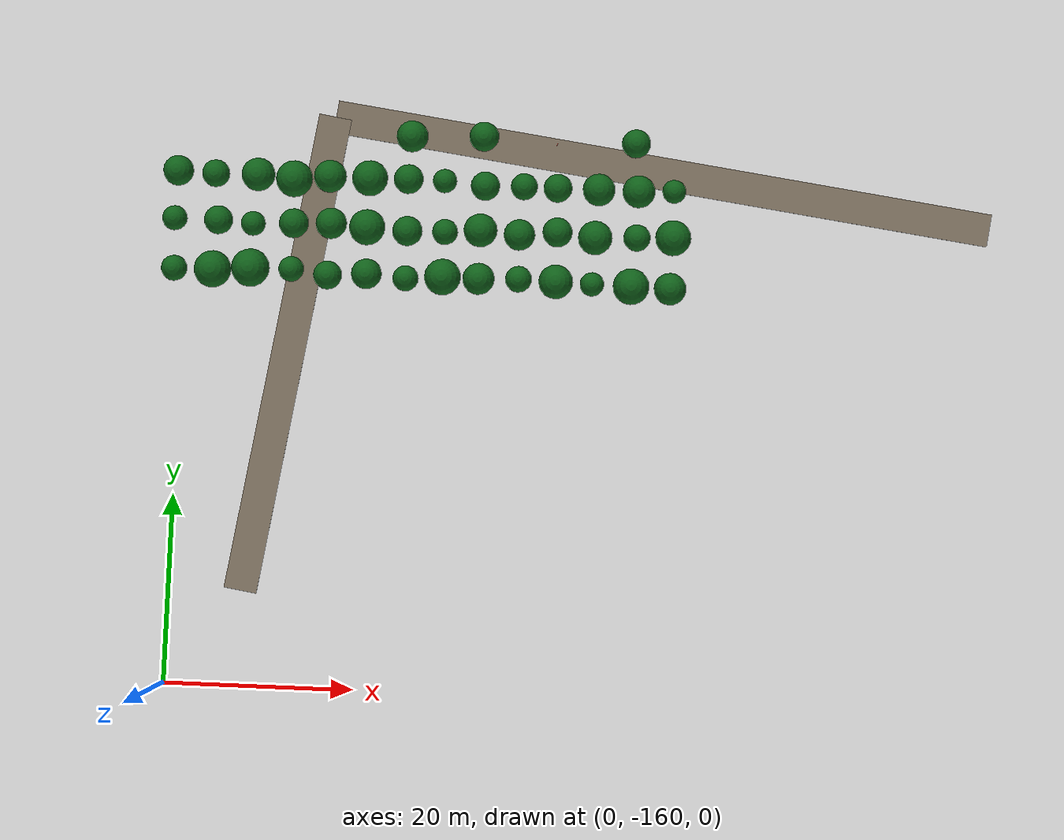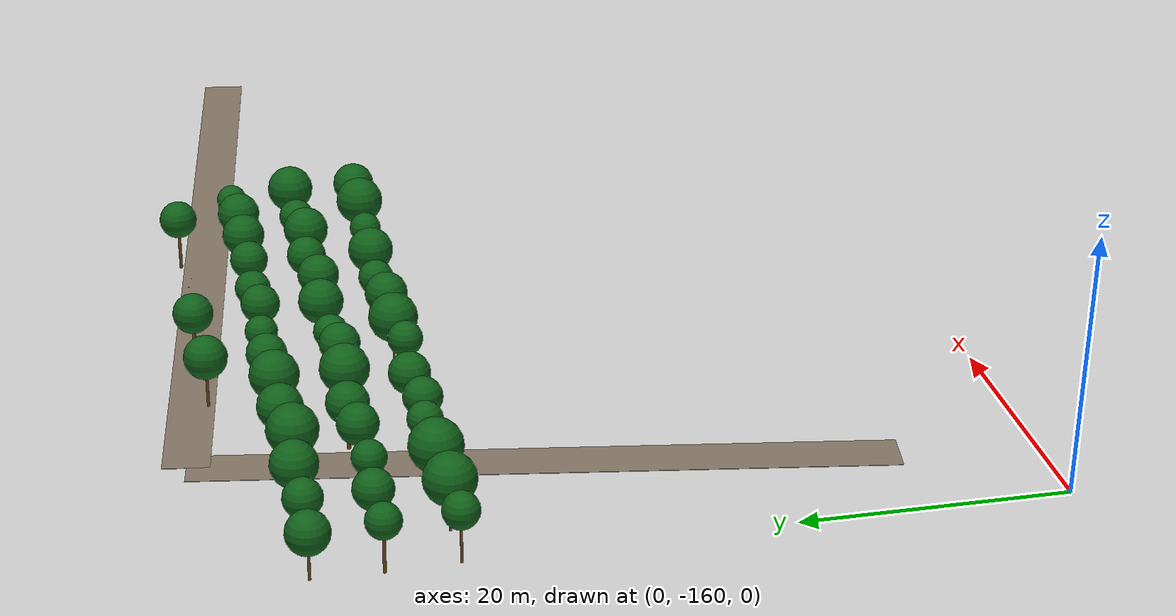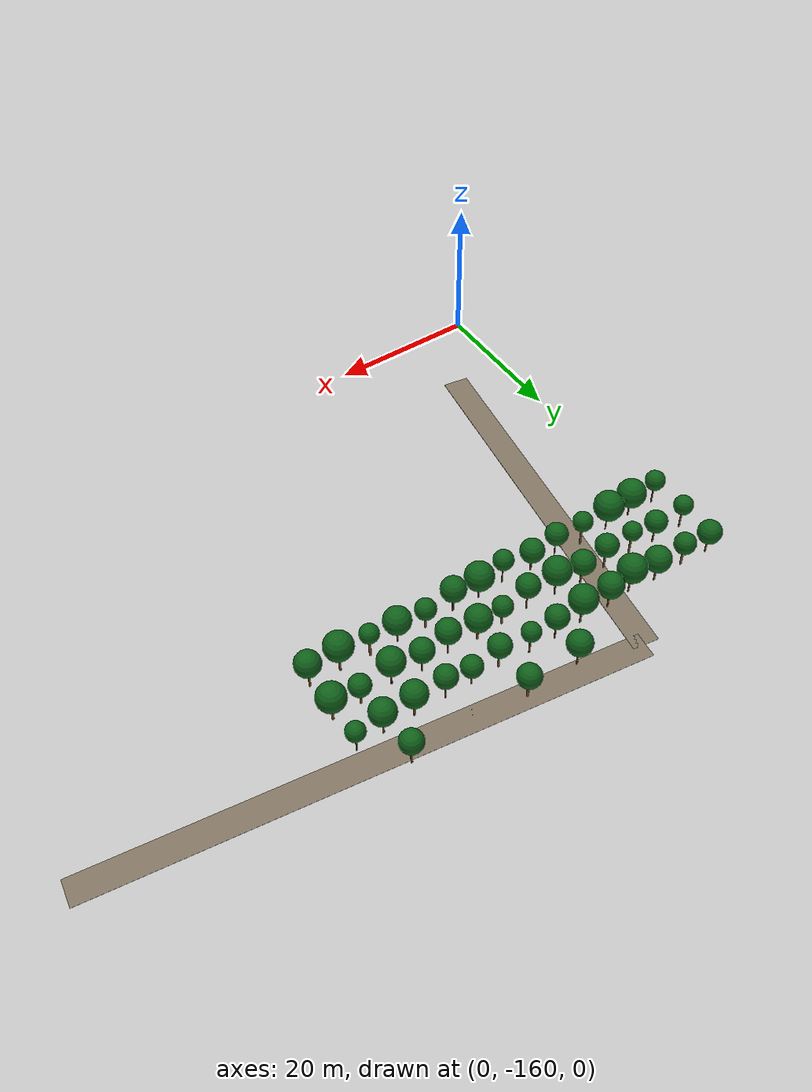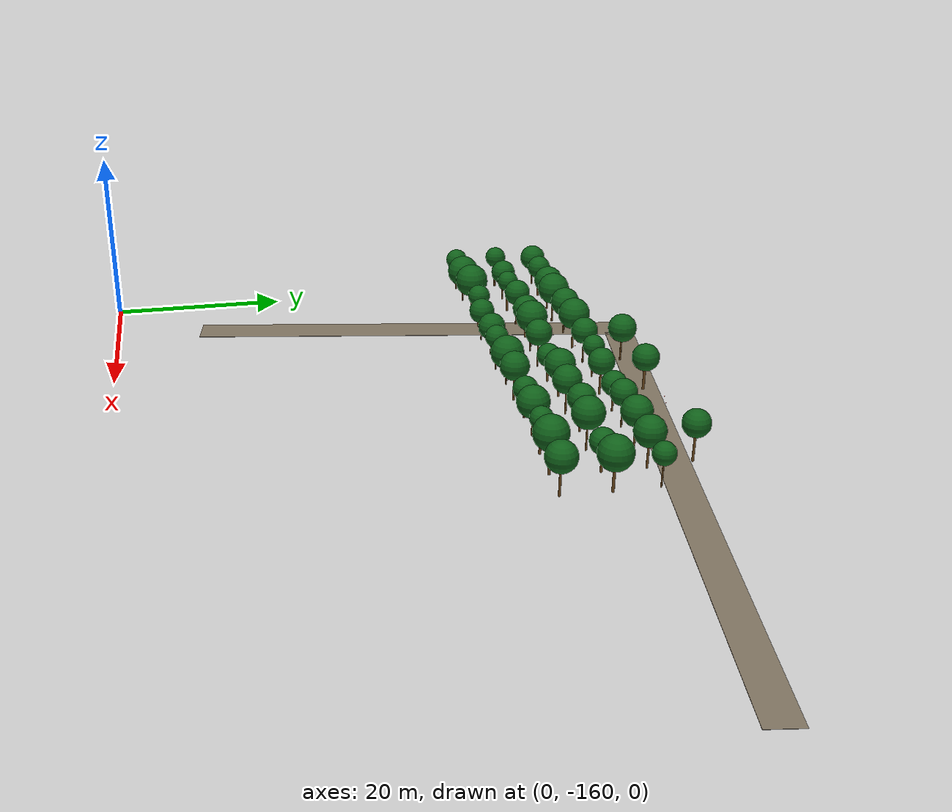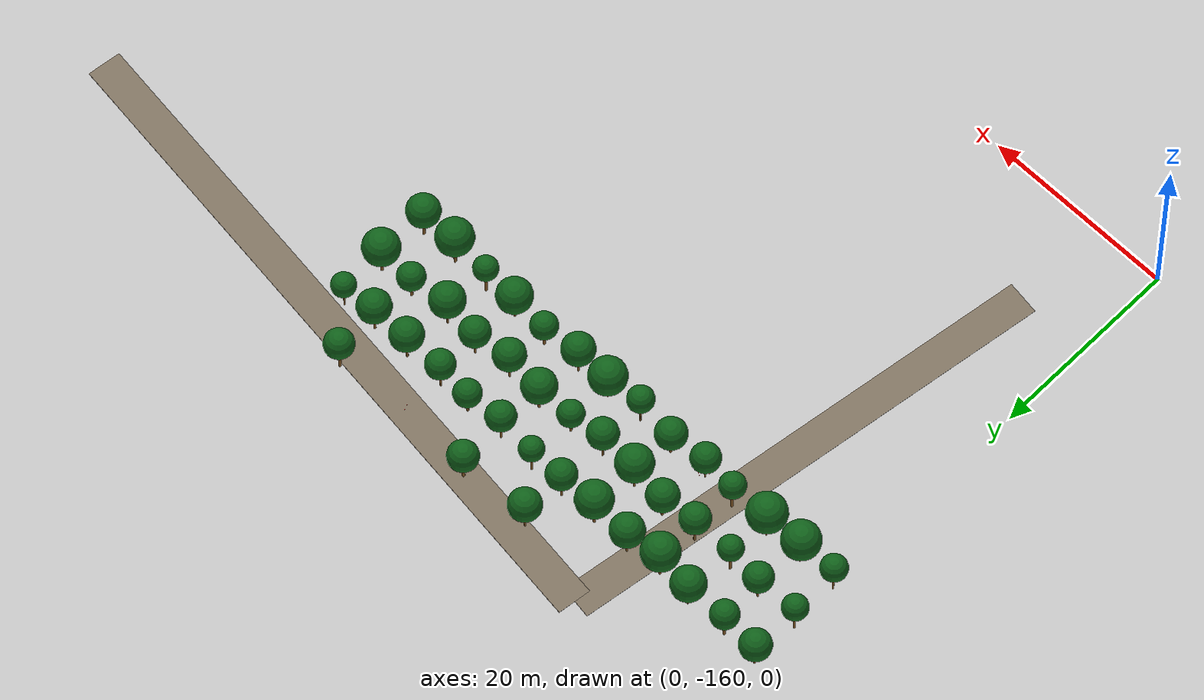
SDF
<sdf version="1.9">
 <world name="cheongsong_orchard">
  <model name="road_5">
   <static>true</static>
   <pose>50.6 -103.7 0.02 0 0 -0.1323</pose>
   <link name="link">
    <collision name="collision">
     <geometry><box><size>70.8 3.5 0.04</size></box></geometry>
     <surface><friction><ode><mu>0.9</mu><mu2>0.9</mu2></ode></friction></surface>
    </collision>
    <visual name="visual">
     <geometry><box><size>70.8 3.5 0.04</size></box></geometry>
     <material><ambient>0.4 0.35 0.28 1</ambient><diffuse>0.5 0.45 0.38 1</diffuse></material>
    </visual>
   </link>
  </model>
  <model name="road_18">
   <static>true</static>
   <pose>11.5 -124.5 0.02 0 0 -1.7239</pose>
   <link name="link">
    <collision name="collision">
     <geometry><box><size>51.5 3.5 0.04</size></box></geometry>
     <surface><friction><ode><mu>0.9</mu><mu2>0.9</mu2></ode></friction></surface>
    </collision>
    <visual name="visual">
     <geometry><box><size>51.5 3.5 0.04</size></box></geometry>
     <material><ambient>0.4 0.35 0.28 1</ambient><diffuse>0.5 0.45 0.38 1</diffuse></material>
    </visual>
   </link>
  </model>
  <model name="apple_tree_26">
   <static>true</static>
   <pose>-0.25 -116.29 0 0 0 0</pose>
   <link name="link">
    <collision name="trunk_col">
     <pose>0 0 1.40 0 0 0</pose>
     <geometry><cylinder><radius>0.097</radius><length>2.79</length></cylinder></geometry>
    </collision>
    <visual name="trunk_vis">
     <pose>0 0 1.40 0 0 0</pose>
     <geometry><cylinder><radius>0.097</radius><length>2.79</length></cylinder></geometry>
     <material><ambient>0.35 0.22 0.08 1</ambient><diffuse>0.45 0.30 0.12 1</diffuse></material>
    </visual>
    <collision name="canopy_col">
     <pose>0 0 4.14 0 0 0</pose>
     <geometry><sphere><radius>1.35</radius></sphere></geometry>
    </collision>
    <visual name="canopy_vis">
     <pose>0 0 4.14 0 0 0</pose>
     <geometry><sphere><radius>1.35</radius></sphere></geometry>
     <material><ambient>0.04 0.28 0.06 1</ambient><diffuse>0.06 0.38 0.10 1</diffuse></material>
    </visual>
   </link>
  </model>
  <model name="apple_tree_27">
   <static>true</static>
   <pose>3.78 -116.24 0 0 0 0</pose>
   <link name="link">
    <collision name="trunk_col">
     <pose>0 0 1.11 0 0 0</pose>
     <geometry><cylinder><radius>0.097</radius><length>2.22</length></cylinder></geometry>
    </collision>
    <visual name="trunk_vis">
     <pose>0 0 1.11 0 0 0</pose>
     <geometry><cylinder><radius>0.097</radius><length>2.22</length></cylinder></geometry>
     <material><ambient>0.35 0.22 0.08 1</ambient><diffuse>0.45 0.30 0.12 1</diffuse></material>
    </visual>
    <collision name="canopy_col">
     <pose>0 0 4.16 0 0 0</pose>
     <geometry><sphere><radius>1.94</radius></sphere></geometry>
    </collision>
    <visual name="canopy_vis">
     <pose>0 0 4.16 0 0 0</pose>
     <geometry><sphere><radius>1.94</radius></sphere></geometry>
     <material><ambient>0.04 0.28 0.06 1</ambient><diffuse>0.06 0.38 0.10 1</diffuse></material>
    </visual>
   </link>
  </model>
  <model name="apple_tree_28">
   <static>true</static>
   <pose>7.78 -115.97 0 0 0 0</pose>
   <link name="link">
    <collision name="trunk_col">
     <pose>0 0 1.24 0 0 0</pose>
     <geometry><cylinder><radius>0.084</radius><length>2.49</length></cylinder></geometry>
    </collision>
    <visual name="trunk_vis">
     <pose>0 0 1.24 0 0 0</pose>
     <geometry><cylinder><radius>0.084</radius><length>2.49</length></cylinder></geometry>
     <material><ambient>0.35 0.22 0.08 1</ambient><diffuse>0.45 0.30 0.12 1</diffuse></material>
    </visual>
    <collision name="canopy_col">
     <pose>0 0 4.49 0 0 0</pose>
     <geometry><sphere><radius>2.00</radius></sphere></geometry>
    </collision>
    <visual name="canopy_vis">
     <pose>0 0 4.49 0 0 0</pose>
     <geometry><sphere><radius>2.00</radius></sphere></geometry>
     <material><ambient>0.04 0.28 0.06 1</ambient><diffuse>0.06 0.38 0.10 1</diffuse></material>
    </visual>
   </link>
  </model>
  <model name="apple_tree_29">
   <static>true</static>
   <pose>12.01 -115.91 0 0 0 0</pose>
   <link name="link">
    <collision name="trunk_col">
     <pose>0 0 1.43 0 0 0</pose>
     <geometry><cylinder><radius>0.139</radius><length>2.85</length></cylinder></geometry>
    </collision>
    <visual name="trunk_vis">
     <pose>0 0 1.43 0 0 0</pose>
     <geometry><cylinder><radius>0.139</radius><length>2.85</length></cylinder></geometry>
     <material><ambient>0.35 0.22 0.08 1</ambient><diffuse>0.45 0.30 0.12 1</diffuse></material>
    </visual>
    <collision name="canopy_col">
     <pose>0 0 4.19 0 0 0</pose>
     <geometry><sphere><radius>1.33</radius></sphere></geometry>
    </collision>
    <visual name="canopy_vis">
     <pose>0 0 4.19 0 0 0</pose>
     <geometry><sphere><radius>1.33</radius></sphere></geometry>
     <material><ambient>0.04 0.28 0.06 1</ambient><diffuse>0.06 0.38 0.10 1</diffuse></material>
    </visual>
   </link>
  </model>
  <model name="apple_tree_30">
   <static>true</static>
   <pose>15.80 -116.36 0 0 0 0</pose>
   <link name="link">
    <collision name="trunk_col">
     <pose>0 0 1.17 0 0 0</pose>
     <geometry><cylinder><radius>0.084</radius><length>2.34</length></cylinder></geometry>
    </collision>
    <visual name="trunk_vis">
     <pose>0 0 1.17 0 0 0</pose>
     <geometry><cylinder><radius>0.084</radius><length>2.34</length></cylinder></geometry>
     <material><ambient>0.35 0.22 0.08 1</ambient><diffuse>0.45 0.30 0.12 1</diffuse></material>
    </visual>
    <collision name="canopy_col">
     <pose>0 0 3.84 0 0 0</pose>
     <geometry><sphere><radius>1.50</radius></sphere></geometry>
    </collision>
    <visual name="canopy_vis">
     <pose>0 0 3.84 0 0 0</pose>
     <geometry><sphere><radius>1.50</radius></sphere></geometry>
     <material><ambient>0.04 0.28 0.06 1</ambient><diffuse>0.06 0.38 0.10 1</diffuse></material>
    </visual>
   </link>
  </model>
  <model name="apple_tree_31">
   <static>true</static>
   <pose>19.84 -116.04 0 0 0 0</pose>
   <link name="link">
    <collision name="trunk_col">
     <pose>0 0 1.00 0 0 0</pose>
     <geometry><cylinder><radius>0.121</radius><length>2.01</length></cylinder></geometry>
    </collision>
    <visual name="trunk_vis">
     <pose>0 0 1.00 0 0 0</pose>
     <geometry><cylinder><radius>0.121</radius><length>2.01</length></cylinder></geometry>
     <material><ambient>0.35 0.22 0.08 1</ambient><diffuse>0.45 0.30 0.12 1</diffuse></material>
    </visual>
    <collision name="canopy_col">
     <pose>0 0 3.61 0 0 0</pose>
     <geometry><sphere><radius>1.60</radius></sphere></geometry>
    </collision>
    <visual name="canopy_vis">
     <pose>0 0 3.61 0 0 0</pose>
     <geometry><sphere><radius>1.60</radius></sphere></geometry>
     <material><ambient>0.04 0.28 0.06 1</ambient><diffuse>0.06 0.38 0.10 1</diffuse></material>
    </visual>
   </link>
  </model>
  <model name="apple_tree_32">
   <static>true</static>
   <pose>24.02 -116.40 0 0 0 0</pose>
   <link name="link">
    <collision name="trunk_col">
     <pose>0 0 1.44 0 0 0</pose>
     <geometry><cylinder><radius>0.086</radius><length>2.89</length></cylinder></geometry>
    </collision>
    <visual name="trunk_vis">
     <pose>0 0 1.44 0 0 0</pose>
     <geometry><cylinder><radius>0.086</radius><length>2.89</length></cylinder></geometry>
     <material><ambient>0.35 0.22 0.08 1</ambient><diffuse>0.45 0.30 0.12 1</diffuse></material>
    </visual>
    <collision name="canopy_col">
     <pose>0 0 4.24 0 0 0</pose>
     <geometry><sphere><radius>1.35</radius></sphere></geometry>
    </collision>
    <visual name="canopy_vis">
     <pose>0 0 4.24 0 0 0</pose>
     <geometry><sphere><radius>1.35</radius></sphere></geometry>
     <material><ambient>0.04 0.28 0.06 1</ambient><diffuse>0.06 0.38 0.10 1</diffuse></material>
    </visual>
   </link>
  </model>
  <model name="apple_tree_33">
   <static>true</static>
   <pose>27.87 -116.08 0 0 0 0</pose>
   <link name="link">
    <collision name="trunk_col">
     <pose>0 0 1.09 0 0 0</pose>
     <geometry><cylinder><radius>0.088</radius><length>2.18</length></cylinder></geometry>
    </collision>
    <visual name="trunk_vis">
     <pose>0 0 1.09 0 0 0</pose>
     <geometry><cylinder><radius>0.088</radius><length>2.18</length></cylinder></geometry>
     <material><ambient>0.35 0.22 0.08 1</ambient><diffuse>0.45 0.30 0.12 1</diffuse></material>
    </visual>
    <collision name="canopy_col">
     <pose>0 0 4.09 0 0 0</pose>
     <geometry><sphere><radius>1.91</radius></sphere></geometry>
    </collision>
    <visual name="canopy_vis">
     <pose>0 0 4.09 0 0 0</pose>
     <geometry><sphere><radius>1.91</radius></sphere></geometry>
     <material><ambient>0.04 0.28 0.06 1</ambient><diffuse>0.06 0.38 0.10 1</diffuse></material>
    </visual>
   </link>
  </model>
  <model name="apple_tree_34">
   <static>true</static>
   <pose>31.66 -116.13 0 0 0 0</pose>
   <link name="link">
    <collision name="trunk_col">
     <pose>0 0 1.28 0 0 0</pose>
     <geometry><cylinder><radius>0.109</radius><length>2.55</length></cylinder></geometry>
    </collision>
    <visual name="trunk_vis">
     <pose>0 0 1.28 0 0 0</pose>
     <geometry><cylinder><radius>0.109</radius><length>2.55</length></cylinder></geometry>
     <material><ambient>0.35 0.22 0.08 1</ambient><diffuse>0.45 0.30 0.12 1</diffuse></material>
    </visual>
    <collision name="canopy_col">
     <pose>0 0 4.22 0 0 0</pose>
     <geometry><sphere><radius>1.67</radius></sphere></geometry>
    </collision>
    <visual name="canopy_vis">
     <pose>0 0 4.22 0 0 0</pose>
     <geometry><sphere><radius>1.67</radius></sphere></geometry>
     <material><ambient>0.04 0.28 0.06 1</ambient><diffuse>0.06 0.38 0.10 1</diffuse></material>
    </visual>
   </link>
  </model>
  <model name="apple_tree_35">
   <static>true</static>
   <pose>35.82 -115.93 0 0 0 0</pose>
   <link name="link">
    <collision name="trunk_col">
     <pose>0 0 1.07 0 0 0</pose>
     <geometry><cylinder><radius>0.130</radius><length>2.15</length></cylinder></geometry>
    </collision>
    <visual name="trunk_vis">
     <pose>0 0 1.07 0 0 0</pose>
     <geometry><cylinder><radius>0.130</radius><length>2.15</length></cylinder></geometry>
     <material><ambient>0.35 0.22 0.08 1</ambient><diffuse>0.45 0.30 0.12 1</diffuse></material>
    </visual>
    <collision name="canopy_col">
     <pose>0 0 3.54 0 0 0</pose>
     <geometry><sphere><radius>1.39</radius></sphere></geometry>
    </collision>
    <visual name="canopy_vis">
     <pose>0 0 3.54 0 0 0</pose>
     <geometry><sphere><radius>1.39</radius></sphere></geometry>
     <material><ambient>0.04 0.28 0.06 1</ambient><diffuse>0.06 0.38 0.10 1</diffuse></material>
    </visual>
   </link>
  </model>
  <model name="apple_tree_36">
   <static>true</static>
   <pose>39.75 -116.09 0 0 0 0</pose>
   <link name="link">
    <collision name="trunk_col">
     <pose>0 0 1.12 0 0 0</pose>
     <geometry><cylinder><radius>0.102</radius><length>2.24</length></cylinder></geometry>
    </collision>
    <visual name="trunk_vis">
     <pose>0 0 1.12 0 0 0</pose>
     <geometry><cylinder><radius>0.102</radius><length>2.24</length></cylinder></geometry>
     <material><ambient>0.35 0.22 0.08 1</ambient><diffuse>0.45 0.30 0.12 1</diffuse></material>
    </visual>
    <collision name="canopy_col">
     <pose>0 0 4.04 0 0 0</pose>
     <geometry><sphere><radius>1.80</radius></sphere></geometry>
    </collision>
    <visual name="canopy_vis">
     <pose>0 0 4.04 0 0 0</pose>
     <geometry><sphere><radius>1.80</radius></sphere></geometry>
     <material><ambient>0.04 0.28 0.06 1</ambient><diffuse>0.06 0.38 0.10 1</diffuse></material>
    </visual>
   </link>
  </model>
  <model name="apple_tree_37">
   <static>true</static>
   <pose>43.55 -116.21 0 0 0 0</pose>
   <link name="link">
    <collision name="trunk_col">
     <pose>0 0 1.46 0 0 0</pose>
     <geometry><cylinder><radius>0.150</radius><length>2.92</length></cylinder></geometry>
    </collision>
    <visual name="trunk_vis">
     <pose>0 0 1.46 0 0 0</pose>
     <geometry><cylinder><radius>0.150</radius><length>2.92</length></cylinder></geometry>
     <material><ambient>0.35 0.22 0.08 1</ambient><diffuse>0.45 0.30 0.12 1</diffuse></material>
    </visual>
    <collision name="canopy_col">
     <pose>0 0 4.18 0 0 0</pose>
     <geometry><sphere><radius>1.26</radius></sphere></geometry>
    </collision>
    <visual name="canopy_vis">
     <pose>0 0 4.18 0 0 0</pose>
     <geometry><sphere><radius>1.26</radius></sphere></geometry>
     <material><ambient>0.04 0.28 0.06 1</ambient><diffuse>0.06 0.38 0.10 1</diffuse></material>
    </visual>
   </link>
  </model>
  <model name="apple_tree_38">
   <static>true</static>
   <pose>47.64 -116.33 0 0 0 0</pose>
   <link name="link">
    <collision name="trunk_col">
     <pose>0 0 1.43 0 0 0</pose>
     <geometry><cylinder><radius>0.142</radius><length>2.86</length></cylinder></geometry>
    </collision>
    <visual name="trunk_vis">
     <pose>0 0 1.43 0 0 0</pose>
     <geometry><cylinder><radius>0.142</radius><length>2.86</length></cylinder></geometry>
     <material><ambient>0.35 0.22 0.08 1</ambient><diffuse>0.45 0.30 0.12 1</diffuse></material>
    </visual>
    <collision name="canopy_col">
     <pose>0 0 4.76 0 0 0</pose>
     <geometry><sphere><radius>1.90</radius></sphere></geometry>
    </collision>
    <visual name="canopy_vis">
     <pose>0 0 4.76 0 0 0</pose>
     <geometry><sphere><radius>1.90</radius></sphere></geometry>
     <material><ambient>0.04 0.28 0.06 1</ambient><diffuse>0.06 0.38 0.10 1</diffuse></material>
    </visual>
   </link>
  </model>
  <model name="apple_tree_39">
   <static>true</static>
   <pose>51.73 -116.39 0 0 0 0</pose>
   <link name="link">
    <collision name="trunk_col">
     <pose>0 0 1.38 0 0 0</pose>
     <geometry><cylinder><radius>0.129</radius><length>2.76</length></cylinder></geometry>
    </collision>
    <visual name="trunk_vis">
     <pose>0 0 1.38 0 0 0</pose>
     <geometry><cylinder><radius>0.129</radius><length>2.76</length></cylinder></geometry>
     <material><ambient>0.35 0.22 0.08 1</ambient><diffuse>0.45 0.30 0.12 1</diffuse></material>
    </visual>
    <collision name="canopy_col">
     <pose>0 0 4.45 0 0 0</pose>
     <geometry><sphere><radius>1.69</radius></sphere></geometry>
    </collision>
    <visual name="canopy_vis">
     <pose>0 0 4.45 0 0 0</pose>
     <geometry><sphere><radius>1.69</radius></sphere></geometry>
     <material><ambient>0.04 0.28 0.06 1</ambient><diffuse>0.06 0.38 0.10 1</diffuse></material>
    </visual>
   </link>
  </model>
  <model name="apple_tree_82">
   <static>true</static>
   <pose>-0.43 -111.03 0 0 0 0</pose>
   <link name="link">
    <collision name="trunk_col">
     <pose>0 0 1.39 0 0 0</pose>
     <geometry><cylinder><radius>0.122</radius><length>2.78</length></cylinder></geometry>
    </collision>
    <visual name="trunk_vis">
     <pose>0 0 1.39 0 0 0</pose>
     <geometry><cylinder><radius>0.122</radius><length>2.78</length></cylinder></geometry>
     <material><ambient>0.35 0.22 0.08 1</ambient><diffuse>0.45 0.30 0.12 1</diffuse></material>
    </visual>
    <collision name="canopy_col">
     <pose>0 0 4.08 0 0 0</pose>
     <geometry><sphere><radius>1.30</radius></sphere></geometry>
    </collision>
    <visual name="canopy_vis">
     <pose>0 0 4.08 0 0 0</pose>
     <geometry><sphere><radius>1.30</radius></sphere></geometry>
     <material><ambient>0.04 0.28 0.06 1</ambient><diffuse>0.06 0.38 0.10 1</diffuse></material>
    </visual>
   </link>
  </model>
  <model name="apple_tree_83">
   <static>true</static>
   <pose>4.10 -111.02 0 0 0 0</pose>
   <link name="link">
    <collision name="trunk_col">
     <pose>0 0 1.14 0 0 0</pose>
     <geometry><cylinder><radius>0.110</radius><length>2.29</length></cylinder></geometry>
    </collision>
    <visual name="trunk_vis">
     <pose>0 0 1.14 0 0 0</pose>
     <geometry><cylinder><radius>0.110</radius><length>2.29</length></cylinder></geometry>
     <material><ambient>0.35 0.22 0.08 1</ambient><diffuse>0.45 0.30 0.12 1</diffuse></material>
    </visual>
    <collision name="canopy_col">
     <pose>0 0 3.78 0 0 0</pose>
     <geometry><sphere><radius>1.50</radius></sphere></geometry>
    </collision>
    <visual name="canopy_vis">
     <pose>0 0 3.78 0 0 0</pose>
     <geometry><sphere><radius>1.50</radius></sphere></geometry>
     <material><ambient>0.04 0.28 0.06 1</ambient><diffuse>0.06 0.38 0.10 1</diffuse></material>
    </visual>
   </link>
  </model>
  <model name="apple_tree_84">
   <static>true</static>
   <pose>7.81 -111.28 0 0 0 0</pose>
   <link name="link">
    <collision name="trunk_col">
     <pose>0 0 1.39 0 0 0</pose>
     <geometry><cylinder><radius>0.138</radius><length>2.78</length></cylinder></geometry>
    </collision>
    <visual name="trunk_vis">
     <pose>0 0 1.39 0 0 0</pose>
     <geometry><cylinder><radius>0.138</radius><length>2.78</length></cylinder></geometry>
     <material><ambient>0.35 0.22 0.08 1</ambient><diffuse>0.45 0.30 0.12 1</diffuse></material>
    </visual>
    <collision name="canopy_col">
     <pose>0 0 4.06 0 0 0</pose>
     <geometry><sphere><radius>1.28</radius></sphere></geometry>
    </collision>
    <visual name="canopy_vis">
     <pose>0 0 4.06 0 0 0</pose>
     <geometry><sphere><radius>1.28</radius></sphere></geometry>
     <material><ambient>0.04 0.28 0.06 1</ambient><diffuse>0.06 0.38 0.10 1</diffuse></material>
    </visual>
   </link>
  </model>
  <model name="apple_tree_85">
   <static>true</static>
   <pose>12.09 -111.11 0 0 0 0</pose>
   <link name="link">
    <collision name="trunk_col">
     <pose>0 0 1.38 0 0 0</pose>
     <geometry><cylinder><radius>0.130</radius><length>2.76</length></cylinder></geometry>
    </collision>
    <visual name="trunk_vis">
     <pose>0 0 1.38 0 0 0</pose>
     <geometry><cylinder><radius>0.130</radius><length>2.76</length></cylinder></geometry>
     <material><ambient>0.35 0.22 0.08 1</ambient><diffuse>0.45 0.30 0.12 1</diffuse></material>
    </visual>
    <collision name="canopy_col">
     <pose>0 0 4.31 0 0 0</pose>
     <geometry><sphere><radius>1.55</radius></sphere></geometry>
    </collision>
    <visual name="canopy_vis">
     <pose>0 0 4.31 0 0 0</pose>
     <geometry><sphere><radius>1.55</radius></sphere></geometry>
     <material><ambient>0.04 0.28 0.06 1</ambient><diffuse>0.06 0.38 0.10 1</diffuse></material>
    </visual>
   </link>
  </model>
  <model name="apple_tree_86">
   <static>true</static>
   <pose>15.95 -110.91 0 0 0 0</pose>
   <link name="link">
    <collision name="trunk_col">
     <pose>0 0 1.11 0 0 0</pose>
     <geometry><cylinder><radius>0.137</radius><length>2.21</length></cylinder></geometry>
    </collision>
    <visual name="trunk_vis">
     <pose>0 0 1.11 0 0 0</pose>
     <geometry><cylinder><radius>0.137</radius><length>2.21</length></cylinder></geometry>
     <material><ambient>0.35 0.22 0.08 1</ambient><diffuse>0.45 0.30 0.12 1</diffuse></material>
    </visual>
    <collision name="canopy_col">
     <pose>0 0 3.84 0 0 0</pose>
     <geometry><sphere><radius>1.63</radius></sphere></geometry>
    </collision>
    <visual name="canopy_vis">
     <pose>0 0 3.84 0 0 0</pose>
     <geometry><sphere><radius>1.63</radius></sphere></geometry>
     <material><ambient>0.04 0.28 0.06 1</ambient><diffuse>0.06 0.38 0.10 1</diffuse></material>
    </visual>
   </link>
  </model>
  <model name="apple_tree_87">
   <static>true</static>
   <pose>19.80 -111.23 0 0 0 0</pose>
   <link name="link">
    <collision name="trunk_col">
     <pose>0 0 1.33 0 0 0</pose>
     <geometry><cylinder><radius>0.099</radius><length>2.66</length></cylinder></geometry>
    </collision>
    <visual name="trunk_vis">
     <pose>0 0 1.33 0 0 0</pose>
     <geometry><cylinder><radius>0.099</radius><length>2.66</length></cylinder></geometry>
     <material><ambient>0.35 0.22 0.08 1</ambient><diffuse>0.45 0.30 0.12 1</diffuse></material>
    </visual>
    <collision name="canopy_col">
     <pose>0 0 4.54 0 0 0</pose>
     <geometry><sphere><radius>1.88</radius></sphere></geometry>
    </collision>
    <visual name="canopy_vis">
     <pose>0 0 4.54 0 0 0</pose>
     <geometry><sphere><radius>1.88</radius></sphere></geometry>
     <material><ambient>0.04 0.28 0.06 1</ambient><diffuse>0.06 0.38 0.10 1</diffuse></material>
    </visual>
   </link>
  </model>
  <model name="apple_tree_88">
   <static>true</static>
   <pose>24.01 -111.44 0 0 0 0</pose>
   <link name="link">
    <collision name="trunk_col">
     <pose>0 0 1.40 0 0 0</pose>
     <geometry><cylinder><radius>0.097</radius><length>2.81</length></cylinder></geometry>
    </collision>
    <visual name="trunk_vis">
     <pose>0 0 1.40 0 0 0</pose>
     <geometry><cylinder><radius>0.097</radius><length>2.81</length></cylinder></geometry>
     <material><ambient>0.35 0.22 0.08 1</ambient><diffuse>0.45 0.30 0.12 1</diffuse></material>
    </visual>
    <collision name="canopy_col">
     <pose>0 0 4.38 0 0 0</pose>
     <geometry><sphere><radius>1.57</radius></sphere></geometry>
    </collision>
    <visual name="canopy_vis">
     <pose>0 0 4.38 0 0 0</pose>
     <geometry><sphere><radius>1.57</radius></sphere></geometry>
     <material><ambient>0.04 0.28 0.06 1</ambient><diffuse>0.06 0.38 0.10 1</diffuse></material>
    </visual>
   </link>
  </model>
  <model name="apple_tree_89">
   <static>true</static>
   <pose>27.88 -111.26 0 0 0 0</pose>
   <link name="link">
    <collision name="trunk_col">
     <pose>0 0 0.99 0 0 0</pose>
     <geometry><cylinder><radius>0.140</radius><length>1.98</length></cylinder></geometry>
    </collision>
    <visual name="trunk_vis">
     <pose>0 0 0.99 0 0 0</pose>
     <geometry><cylinder><radius>0.140</radius><length>1.98</length></cylinder></geometry>
     <material><ambient>0.35 0.22 0.08 1</ambient><diffuse>0.45 0.30 0.12 1</diffuse></material>
    </visual>
    <collision name="canopy_col">
     <pose>0 0 3.32 0 0 0</pose>
     <geometry><sphere><radius>1.35</radius></sphere></geometry>
    </collision>
    <visual name="canopy_vis">
     <pose>0 0 3.32 0 0 0</pose>
     <geometry><sphere><radius>1.35</radius></sphere></geometry>
     <material><ambient>0.04 0.28 0.06 1</ambient><diffuse>0.06 0.38 0.10 1</diffuse></material>
    </visual>
   </link>
  </model>
  <model name="apple_tree_90">
   <static>true</static>
   <pose>31.64 -111.01 0 0 0 0</pose>
   <link name="link">
    <collision name="trunk_col">
     <pose>0 0 1.14 0 0 0</pose>
     <geometry><cylinder><radius>0.142</radius><length>2.28</length></cylinder></geometry>
    </collision>
    <visual name="trunk_vis">
     <pose>0 0 1.14 0 0 0</pose>
     <geometry><cylinder><radius>0.142</radius><length>2.28</length></cylinder></geometry>
     <material><ambient>0.35 0.22 0.08 1</ambient><diffuse>0.45 0.30 0.12 1</diffuse></material>
    </visual>
    <collision name="canopy_col">
     <pose>0 0 4.04 0 0 0</pose>
     <geometry><sphere><radius>1.76</radius></sphere></geometry>
    </collision>
    <visual name="canopy_vis">
     <pose>0 0 4.04 0 0 0</pose>
     <geometry><sphere><radius>1.76</radius></sphere></geometry>
     <material><ambient>0.04 0.28 0.06 1</ambient><diffuse>0.06 0.38 0.10 1</diffuse></material>
    </visual>
   </link>
  </model>
  <model name="apple_tree_91">
   <static>true</static>
   <pose>35.75 -111.34 0 0 0 0</pose>
   <link name="link">
    <collision name="trunk_col">
     <pose>0 0 1.30 0 0 0</pose>
     <geometry><cylinder><radius>0.106</radius><length>2.60</length></cylinder></geometry>
    </collision>
    <visual name="trunk_vis">
     <pose>0 0 1.30 0 0 0</pose>
     <geometry><cylinder><radius>0.106</radius><length>2.60</length></cylinder></geometry>
     <material><ambient>0.35 0.22 0.08 1</ambient><diffuse>0.45 0.30 0.12 1</diffuse></material>
    </visual>
    <collision name="canopy_col">
     <pose>0 0 4.24 0 0 0</pose>
     <geometry><sphere><radius>1.64</radius></sphere></geometry>
    </collision>
    <visual name="canopy_vis">
     <pose>0 0 4.24 0 0 0</pose>
     <geometry><sphere><radius>1.64</radius></sphere></geometry>
     <material><ambient>0.04 0.28 0.06 1</ambient><diffuse>0.06 0.38 0.10 1</diffuse></material>
    </visual>
   </link>
  </model>
  <model name="apple_tree_92">
   <static>true</static>
   <pose>39.72 -110.89 0 0 0 0</pose>
   <link name="link">
    <collision name="trunk_col">
     <pose>0 0 1.24 0 0 0</pose>
     <geometry><cylinder><radius>0.105</radius><length>2.49</length></cylinder></geometry>
    </collision>
    <visual name="trunk_vis">
     <pose>0 0 1.24 0 0 0</pose>
     <geometry><cylinder><radius>0.105</radius><length>2.49</length></cylinder></geometry>
     <material><ambient>0.35 0.22 0.08 1</ambient><diffuse>0.45 0.30 0.12 1</diffuse></material>
    </visual>
    <collision name="canopy_col">
     <pose>0 0 4.05 0 0 0</pose>
     <geometry><sphere><radius>1.56</radius></sphere></geometry>
    </collision>
    <visual name="canopy_vis">
     <pose>0 0 4.05 0 0 0</pose>
     <geometry><sphere><radius>1.56</radius></sphere></geometry>
     <material><ambient>0.04 0.28 0.06 1</ambient><diffuse>0.06 0.38 0.10 1</diffuse></material>
    </visual>
   </link>
  </model>
  <model name="apple_tree_93">
   <static>true</static>
   <pose>43.69 -111.35 0 0 0 0</pose>
   <link name="link">
    <collision name="trunk_col">
     <pose>0 0 1.33 0 0 0</pose>
     <geometry><cylinder><radius>0.102</radius><length>2.65</length></cylinder></geometry>
    </collision>
    <visual name="trunk_vis">
     <pose>0 0 1.33 0 0 0</pose>
     <geometry><cylinder><radius>0.102</radius><length>2.65</length></cylinder></geometry>
     <material><ambient>0.35 0.22 0.08 1</ambient><diffuse>0.45 0.30 0.12 1</diffuse></material>
    </visual>
    <collision name="canopy_col">
     <pose>0 0 4.45 0 0 0</pose>
     <geometry><sphere><radius>1.79</radius></sphere></geometry>
    </collision>
    <visual name="canopy_vis">
     <pose>0 0 4.45 0 0 0</pose>
     <geometry><sphere><radius>1.79</radius></sphere></geometry>
     <material><ambient>0.04 0.28 0.06 1</ambient><diffuse>0.06 0.38 0.10 1</diffuse></material>
    </visual>
   </link>
  </model>
  <model name="apple_tree_94">
   <static>true</static>
   <pose>48.08 -111.08 0 0 0 0</pose>
   <link name="link">
    <collision name="trunk_col">
     <pose>0 0 1.07 0 0 0</pose>
     <geometry><cylinder><radius>0.132</radius><length>2.14</length></cylinder></geometry>
    </collision>
    <visual name="trunk_vis">
     <pose>0 0 1.07 0 0 0</pose>
     <geometry><cylinder><radius>0.132</radius><length>2.14</length></cylinder></geometry>
     <material><ambient>0.35 0.22 0.08 1</ambient><diffuse>0.45 0.30 0.12 1</diffuse></material>
    </visual>
    <collision name="canopy_col">
     <pose>0 0 3.56 0 0 0</pose>
     <geometry><sphere><radius>1.42</radius></sphere></geometry>
    </collision>
    <visual name="canopy_vis">
     <pose>0 0 3.56 0 0 0</pose>
     <geometry><sphere><radius>1.42</radius></sphere></geometry>
     <material><ambient>0.04 0.28 0.06 1</ambient><diffuse>0.06 0.38 0.10 1</diffuse></material>
    </visual>
   </link>
  </model>
  <model name="apple_tree_95">
   <static>true</static>
   <pose>51.86 -111.03 0 0 0 0</pose>
   <link name="link">
    <collision name="trunk_col">
     <pose>0 0 1.27 0 0 0</pose>
     <geometry><cylinder><radius>0.149</radius><length>2.53</length></cylinder></geometry>
    </collision>
    <visual name="trunk_vis">
     <pose>0 0 1.27 0 0 0</pose>
     <geometry><cylinder><radius>0.149</radius><length>2.53</length></cylinder></geometry>
     <material><ambient>0.35 0.22 0.08 1</ambient><diffuse>0.45 0.30 0.12 1</diffuse></material>
    </visual>
    <collision name="canopy_col">
     <pose>0 0 4.40 0 0 0</pose>
     <geometry><sphere><radius>1.87</radius></sphere></geometry>
    </collision>
    <visual name="canopy_vis">
     <pose>0 0 4.40 0 0 0</pose>
     <geometry><sphere><radius>1.87</radius></sphere></geometry>
     <material><ambient>0.04 0.28 0.06 1</ambient><diffuse>0.06 0.38 0.10 1</diffuse></material>
    </visual>
   </link>
  </model>
  <model name="apple_tree_134">
   <static>true</static>
   <pose>-0.34 -105.98 0 0 0 0</pose>
   <link name="link">
    <collision name="trunk_col">
     <pose>0 0 1.07 0 0 0</pose>
     <geometry><cylinder><radius>0.107</radius><length>2.14</length></cylinder></geometry>
    </collision>
    <visual name="trunk_vis">
     <pose>0 0 1.07 0 0 0</pose>
     <geometry><cylinder><radius>0.107</radius><length>2.14</length></cylinder></geometry>
     <material><ambient>0.35 0.22 0.08 1</ambient><diffuse>0.45 0.30 0.12 1</diffuse></material>
    </visual>
    <collision name="canopy_col">
     <pose>0 0 3.73 0 0 0</pose>
     <geometry><sphere><radius>1.59</radius></sphere></geometry>
    </collision>
    <visual name="canopy_vis">
     <pose>0 0 3.73 0 0 0</pose>
     <geometry><sphere><radius>1.59</radius></sphere></geometry>
     <material><ambient>0.04 0.28 0.06 1</ambient><diffuse>0.06 0.38 0.10 1</diffuse></material>
    </visual>
   </link>
  </model>
  <model name="apple_tree_135">
   <static>true</static>
   <pose>3.65 -106.15 0 0 0 0</pose>
   <link name="link">
    <collision name="trunk_col">
     <pose>0 0 1.26 0 0 0</pose>
     <geometry><cylinder><radius>0.149</radius><length>2.51</length></cylinder></geometry>
    </collision>
    <visual name="trunk_vis">
     <pose>0 0 1.26 0 0 0</pose>
     <geometry><cylinder><radius>0.149</radius><length>2.51</length></cylinder></geometry>
     <material><ambient>0.35 0.22 0.08 1</ambient><diffuse>0.45 0.30 0.12 1</diffuse></material>
    </visual>
    <collision name="canopy_col">
     <pose>0 0 3.95 0 0 0</pose>
     <geometry><sphere><radius>1.44</radius></sphere></geometry>
    </collision>
    <visual name="canopy_vis">
     <pose>0 0 3.95 0 0 0</pose>
     <geometry><sphere><radius>1.44</radius></sphere></geometry>
     <material><ambient>0.04 0.28 0.06 1</ambient><diffuse>0.06 0.38 0.10 1</diffuse></material>
    </visual>
   </link>
  </model>
  <model name="apple_tree_136">
   <static>true</static>
   <pose>8.10 -106.09 0 0 0 0</pose>
   <link name="link">
    <collision name="trunk_col">
     <pose>0 0 1.11 0 0 0</pose>
     <geometry><cylinder><radius>0.120</radius><length>2.22</length></cylinder></geometry>
    </collision>
    <visual name="trunk_vis">
     <pose>0 0 1.11 0 0 0</pose>
     <geometry><cylinder><radius>0.120</radius><length>2.22</length></cylinder></geometry>
     <material><ambient>0.35 0.22 0.08 1</ambient><diffuse>0.45 0.30 0.12 1</diffuse></material>
    </visual>
    <collision name="canopy_col">
     <pose>0 0 3.97 0 0 0</pose>
     <geometry><sphere><radius>1.75</radius></sphere></geometry>
    </collision>
    <visual name="canopy_vis">
     <pose>0 0 3.97 0 0 0</pose>
     <geometry><sphere><radius>1.75</radius></sphere></geometry>
     <material><ambient>0.04 0.28 0.06 1</ambient><diffuse>0.06 0.38 0.10 1</diffuse></material>
    </visual>
   </link>
  </model>
  <model name="apple_tree_137">
   <static>true</static>
   <pose>11.96 -106.46 0 0 0 0</pose>
   <link name="link">
    <collision name="trunk_col">
     <pose>0 0 1.27 0 0 0</pose>
     <geometry><cylinder><radius>0.115</radius><length>2.54</length></cylinder></geometry>
    </collision>
    <visual name="trunk_vis">
     <pose>0 0 1.27 0 0 0</pose>
     <geometry><cylinder><radius>0.115</radius><length>2.54</length></cylinder></geometry>
     <material><ambient>0.35 0.22 0.08 1</ambient><diffuse>0.45 0.30 0.12 1</diffuse></material>
    </visual>
    <collision name="canopy_col">
     <pose>0 0 4.46 0 0 0</pose>
     <geometry><sphere><radius>1.92</radius></sphere></geometry>
    </collision>
    <visual name="canopy_vis">
     <pose>0 0 4.46 0 0 0</pose>
     <geometry><sphere><radius>1.92</radius></sphere></geometry>
     <material><ambient>0.04 0.28 0.06 1</ambient><diffuse>0.06 0.38 0.10 1</diffuse></material>
    </visual>
   </link>
  </model>
  <model name="apple_tree_138">
   <static>true</static>
   <pose>15.68 -106.01 0 0 0 0</pose>
   <link name="link">
    <collision name="trunk_col">
     <pose>0 0 1.27 0 0 0</pose>
     <geometry><cylinder><radius>0.105</radius><length>2.54</length></cylinder></geometry>
    </collision>
    <visual name="trunk_vis">
     <pose>0 0 1.27 0 0 0</pose>
     <geometry><cylinder><radius>0.105</radius><length>2.54</length></cylinder></geometry>
     <material><ambient>0.35 0.22 0.08 1</ambient><diffuse>0.45 0.30 0.12 1</diffuse></material>
    </visual>
    <collision name="canopy_col">
     <pose>0 0 4.25 0 0 0</pose>
     <geometry><sphere><radius>1.71</radius></sphere></geometry>
    </collision>
    <visual name="canopy_vis">
     <pose>0 0 4.25 0 0 0</pose>
     <geometry><sphere><radius>1.71</radius></sphere></geometry>
     <material><ambient>0.04 0.28 0.06 1</ambient><diffuse>0.06 0.38 0.10 1</diffuse></material>
    </visual>
   </link>
  </model>
  <model name="apple_tree_139">
   <static>true</static>
   <pose>19.88 -106.08 0 0 0 0</pose>
   <link name="link">
    <collision name="trunk_col">
     <pose>0 0 1.33 0 0 0</pose>
     <geometry><cylinder><radius>0.126</radius><length>2.65</length></cylinder></geometry>
    </collision>
    <visual name="trunk_vis">
     <pose>0 0 1.33 0 0 0</pose>
     <geometry><cylinder><radius>0.126</radius><length>2.65</length></cylinder></geometry>
     <material><ambient>0.35 0.22 0.08 1</ambient><diffuse>0.45 0.30 0.12 1</diffuse></material>
    </visual>
    <collision name="canopy_col">
     <pose>0 0 4.52 0 0 0</pose>
     <geometry><sphere><radius>1.87</radius></sphere></geometry>
    </collision>
    <visual name="canopy_vis">
     <pose>0 0 4.52 0 0 0</pose>
     <geometry><sphere><radius>1.87</radius></sphere></geometry>
     <material><ambient>0.04 0.28 0.06 1</ambient><diffuse>0.06 0.38 0.10 1</diffuse></material>
    </visual>
   </link>
  </model>
  <model name="apple_tree_140">
   <static>true</static>
   <pose>23.89 -105.95 0 0 0 0</pose>
   <link name="link">
    <collision name="trunk_col">
     <pose>0 0 1.29 0 0 0</pose>
     <geometry><cylinder><radius>0.102</radius><length>2.58</length></cylinder></geometry>
    </collision>
    <visual name="trunk_vis">
     <pose>0 0 1.29 0 0 0</pose>
     <geometry><cylinder><radius>0.102</radius><length>2.58</length></cylinder></geometry>
     <material><ambient>0.35 0.22 0.08 1</ambient><diffuse>0.45 0.30 0.12 1</diffuse></material>
    </visual>
    <collision name="canopy_col">
     <pose>0 0 4.13 0 0 0</pose>
     <geometry><sphere><radius>1.55</radius></sphere></geometry>
    </collision>
    <visual name="canopy_vis">
     <pose>0 0 4.13 0 0 0</pose>
     <geometry><sphere><radius>1.55</radius></sphere></geometry>
     <material><ambient>0.04 0.28 0.06 1</ambient><diffuse>0.06 0.38 0.10 1</diffuse></material>
    </visual>
   </link>
  </model>
  <model name="apple_tree_141">
   <static>true</static>
   <pose>27.69 -105.97 0 0 0 0</pose>
   <link name="link">
    <collision name="trunk_col">
     <pose>0 0 1.37 0 0 0</pose>
     <geometry><cylinder><radius>0.113</radius><length>2.73</length></cylinder></geometry>
    </collision>
    <visual name="trunk_vis">
     <pose>0 0 1.37 0 0 0</pose>
     <geometry><cylinder><radius>0.113</radius><length>2.73</length></cylinder></geometry>
     <material><ambient>0.35 0.22 0.08 1</ambient><diffuse>0.45 0.30 0.12 1</diffuse></material>
    </visual>
    <collision name="canopy_col">
     <pose>0 0 3.99 0 0 0</pose>
     <geometry><sphere><radius>1.26</radius></sphere></geometry>
    </collision>
    <visual name="canopy_vis">
     <pose>0 0 3.99 0 0 0</pose>
     <geometry><sphere><radius>1.26</radius></sphere></geometry>
     <material><ambient>0.04 0.28 0.06 1</ambient><diffuse>0.06 0.38 0.10 1</diffuse></material>
    </visual>
   </link>
  </model>
  <model name="apple_tree_142">
   <static>true</static>
   <pose>31.96 -106.35 0 0 0 0</pose>
   <link name="link">
    <collision name="trunk_col">
     <pose>0 0 1.30 0 0 0</pose>
     <geometry><cylinder><radius>0.127</radius><length>2.61</length></cylinder></geometry>
    </collision>
    <visual name="trunk_vis">
     <pose>0 0 1.30 0 0 0</pose>
     <geometry><cylinder><radius>0.127</radius><length>2.61</length></cylinder></geometry>
     <material><ambient>0.35 0.22 0.08 1</ambient><diffuse>0.45 0.30 0.12 1</diffuse></material>
    </visual>
    <collision name="canopy_col">
     <pose>0 0 4.13 0 0 0</pose>
     <geometry><sphere><radius>1.52</radius></sphere></geometry>
    </collision>
    <visual name="canopy_vis">
     <pose>0 0 4.13 0 0 0</pose>
     <geometry><sphere><radius>1.52</radius></sphere></geometry>
     <material><ambient>0.04 0.28 0.06 1</ambient><diffuse>0.06 0.38 0.10 1</diffuse></material>
    </visual>
   </link>
  </model>
  <model name="apple_tree_143">
   <static>true</static>
   <pose>36.02 -106.16 0 0 0 0</pose>
   <link name="link">
    <collision name="trunk_col">
     <pose>0 0 1.02 0 0 0</pose>
     <geometry><cylinder><radius>0.108</radius><length>2.04</length></cylinder></geometry>
    </collision>
    <visual name="trunk_vis">
     <pose>0 0 1.02 0 0 0</pose>
     <geometry><cylinder><radius>0.108</radius><length>2.04</length></cylinder></geometry>
     <material><ambient>0.35 0.22 0.08 1</ambient><diffuse>0.45 0.30 0.12 1</diffuse></material>
    </visual>
    <collision name="canopy_col">
     <pose>0 0 3.45 0 0 0</pose>
     <geometry><sphere><radius>1.41</radius></sphere></geometry>
    </collision>
    <visual name="canopy_vis">
     <pose>0 0 3.45 0 0 0</pose>
     <geometry><sphere><radius>1.41</radius></sphere></geometry>
     <material><ambient>0.04 0.28 0.06 1</ambient><diffuse>0.06 0.38 0.10 1</diffuse></material>
    </visual>
   </link>
  </model>
  <model name="apple_tree_144">
   <static>true</static>
   <pose>39.58 -106.27 0 0 0 0</pose>
   <link name="link">
    <collision name="trunk_col">
     <pose>0 0 1.34 0 0 0</pose>
     <geometry><cylinder><radius>0.098</radius><length>2.68</length></cylinder></geometry>
    </collision>
    <visual name="trunk_vis">
     <pose>0 0 1.34 0 0 0</pose>
     <geometry><cylinder><radius>0.098</radius><length>2.68</length></cylinder></geometry>
     <material><ambient>0.35 0.22 0.08 1</ambient><diffuse>0.45 0.30 0.12 1</diffuse></material>
    </visual>
    <collision name="canopy_col">
     <pose>0 0 4.19 0 0 0</pose>
     <geometry><sphere><radius>1.50</radius></sphere></geometry>
    </collision>
    <visual name="canopy_vis">
     <pose>0 0 4.19 0 0 0</pose>
     <geometry><sphere><radius>1.50</radius></sphere></geometry>
     <material><ambient>0.04 0.28 0.06 1</ambient><diffuse>0.06 0.38 0.10 1</diffuse></material>
    </visual>
   </link>
  </model>
  <model name="apple_tree_145">
   <static>true</static>
   <pose>43.89 -106.27 0 0 0 0</pose>
   <link name="link">
    <collision name="trunk_col">
     <pose>0 0 1.30 0 0 0</pose>
     <geometry><cylinder><radius>0.113</radius><length>2.61</length></cylinder></geometry>
    </collision>
    <visual name="trunk_vis">
     <pose>0 0 1.30 0 0 0</pose>
     <geometry><cylinder><radius>0.113</radius><length>2.61</length></cylinder></geometry>
     <material><ambient>0.35 0.22 0.08 1</ambient><diffuse>0.45 0.30 0.12 1</diffuse></material>
    </visual>
    <collision name="canopy_col">
     <pose>0 0 4.30 0 0 0</pose>
     <geometry><sphere><radius>1.70</radius></sphere></geometry>
    </collision>
    <visual name="canopy_vis">
     <pose>0 0 4.30 0 0 0</pose>
     <geometry><sphere><radius>1.70</radius></sphere></geometry>
     <material><ambient>0.04 0.28 0.06 1</ambient><diffuse>0.06 0.38 0.10 1</diffuse></material>
    </visual>
   </link>
  </model>
  <model name="apple_tree_146">
   <static>true</static>
   <pose>48.08 -106.29 0 0 0 0</pose>
   <link name="link">
    <collision name="trunk_col">
     <pose>0 0 1.27 0 0 0</pose>
     <geometry><cylinder><radius>0.125</radius><length>2.54</length></cylinder></geometry>
    </collision>
    <visual name="trunk_vis">
     <pose>0 0 1.27 0 0 0</pose>
     <geometry><cylinder><radius>0.125</radius><length>2.54</length></cylinder></geometry>
     <material><ambient>0.35 0.22 0.08 1</ambient><diffuse>0.45 0.30 0.12 1</diffuse></material>
    </visual>
    <collision name="canopy_col">
     <pose>0 0 4.25 0 0 0</pose>
     <geometry><sphere><radius>1.71</radius></sphere></geometry>
    </collision>
    <visual name="canopy_vis">
     <pose>0 0 4.25 0 0 0</pose>
     <geometry><sphere><radius>1.71</radius></sphere></geometry>
     <material><ambient>0.04 0.28 0.06 1</ambient><diffuse>0.06 0.38 0.10 1</diffuse></material>
    </visual>
   </link>
  </model>
  <model name="apple_tree_147">
   <static>true</static>
   <pose>51.79 -106.07 0 0 0 0</pose>
   <link name="link">
    <collision name="trunk_col">
     <pose>0 0 1.29 0 0 0</pose>
     <geometry><cylinder><radius>0.088</radius><length>2.58</length></cylinder></geometry>
    </collision>
    <visual name="trunk_vis">
     <pose>0 0 1.29 0 0 0</pose>
     <geometry><cylinder><radius>0.088</radius><length>2.58</length></cylinder></geometry>
     <material><ambient>0.35 0.22 0.08 1</ambient><diffuse>0.45 0.30 0.12 1</diffuse></material>
    </visual>
    <collision name="canopy_col">
     <pose>0 0 3.82 0 0 0</pose>
     <geometry><sphere><radius>1.24</radius></sphere></geometry>
    </collision>
    <visual name="canopy_vis">
     <pose>0 0 3.82 0 0 0</pose>
     <geometry><sphere><radius>1.24</radius></sphere></geometry>
     <material><ambient>0.04 0.28 0.06 1</ambient><diffuse>0.06 0.38 0.10 1</diffuse></material>
    </visual>
   </link>
  </model>
  <model name="apple_tree_186">
   <static>true</static>
   <pose>24.10 -101.44 0 0 0 0</pose>
   <link name="link">
    <collision name="trunk_col">
     <pose>0 0 1.26 0 0 0</pose>
     <geometry><cylinder><radius>0.107</radius><length>2.53</length></cylinder></geometry>
    </collision>
    <visual name="trunk_vis">
     <pose>0 0 1.26 0 0 0</pose>
     <geometry><cylinder><radius>0.107</radius><length>2.53</length></cylinder></geometry>
     <material><ambient>0.35 0.22 0.08 1</ambient><diffuse>0.45 0.30 0.12 1</diffuse></material>
    </visual>
    <collision name="canopy_col">
     <pose>0 0 4.19 0 0 0</pose>
     <geometry><sphere><radius>1.66</radius></sphere></geometry>
    </collision>
    <visual name="canopy_vis">
     <pose>0 0 4.19 0 0 0</pose>
     <geometry><sphere><radius>1.66</radius></sphere></geometry>
     <material><ambient>0.04 0.28 0.06 1</ambient><diffuse>0.06 0.38 0.10 1</diffuse></material>
    </visual>
   </link>
  </model>
  <model name="apple_tree_188">
   <static>true</static>
   <pose>31.62 -101.13 0 0 0 0</pose>
   <link name="link">
    <collision name="trunk_col">
     <pose>0 0 1.22 0 0 0</pose>
     <geometry><cylinder><radius>0.147</radius><length>2.44</length></cylinder></geometry>
    </collision>
    <visual name="trunk_vis">
     <pose>0 0 1.22 0 0 0</pose>
     <geometry><cylinder><radius>0.147</radius><length>2.44</length></cylinder></geometry>
     <material><ambient>0.35 0.22 0.08 1</ambient><diffuse>0.45 0.30 0.12 1</diffuse></material>
    </visual>
    <collision name="canopy_col">
     <pose>0 0 4.00 0 0 0</pose>
     <geometry><sphere><radius>1.56</radius></sphere></geometry>
    </collision>
    <visual name="canopy_vis">
     <pose>0 0 4.00 0 0 0</pose>
     <geometry><sphere><radius>1.56</radius></sphere></geometry>
     <material><ambient>0.04 0.28 0.06 1</ambient><diffuse>0.06 0.38 0.10 1</diffuse></material>
    </visual>
   </link>
  </model>
  <model name="apple_tree_192">
   <static>true</static>
   <pose>47.60 -101.28 0 0 0 0</pose>
   <link name="link">
    <collision name="trunk_col">
     <pose>0 0 1.45 0 0 0</pose>
     <geometry><cylinder><radius>0.129</radius><length>2.89</length></cylinder></geometry>
    </collision>
    <visual name="trunk_vis">
     <pose>0 0 1.45 0 0 0</pose>
     <geometry><cylinder><radius>0.129</radius><length>2.89</length></cylinder></geometry>
     <material><ambient>0.35 0.22 0.08 1</ambient><diffuse>0.45 0.30 0.12 1</diffuse></material>
    </visual>
    <collision name="canopy_col">
     <pose>0 0 4.41 0 0 0</pose>
     <geometry><sphere><radius>1.51</radius></sphere></geometry>
    </collision>
    <visual name="canopy_vis">
     <pose>0 0 4.41 0 0 0</pose>
     <geometry><sphere><radius>1.51</radius></sphere></geometry>
     <material><ambient>0.04 0.28 0.06 1</ambient><diffuse>0.06 0.38 0.10 1</diffuse></material>
    </visual>
   </link>
  </model>
  <model name="apple_30_0">
   <static>true</static>
   <pose>15.71 -115.36 2.22 0 0 0</pose>
   <link name="link">
    <visual name="visual">
     <geometry><sphere><radius>0.04</radius></sphere></geometry>
     <material><ambient>0.7 0.05 0.02 1</ambient><diffuse>0.9 0.10 0.05 1</diffuse></material>
    </visual>
   </link>
  </model>
  <model name="apple_30_1">
   <static>true</static>
   <pose>14.77 -115.82 2.79 0 0 0</pose>
   <link name="link">
    <visual name="visual">
     <geometry><sphere><radius>0.04</radius></sphere></geometry>
     <material><ambient>0.7 0.05 0.02 1</ambient><diffuse>0.9 0.10 0.05 1</diffuse></material>
    </visual>
   </link>
  </model>
  <model name="apple_30_2">
   <static>true</static>
   <pose>14.91 -116.69 1.90 0 0 0</pose>
   <link name="link">
    <visual name="visual">
     <geometry><sphere><radius>0.04</radius></sphere></geometry>
     <material><ambient>0.7 0.05 0.02 1</ambient><diffuse>0.9 0.10 0.05 1</diffuse></material>
    </visual>
   </link>
  </model>
  <model name="apple_30_3">
   <static>true</static>
   <pose>15.46 -115.24 2.35 0 0 0</pose>
   <link name="link">
    <visual name="visual">
     <geometry><sphere><radius>0.04</radius></sphere></geometry>
     <material><ambient>0.7 0.05 0.02 1</ambient><diffuse>0.9 0.10 0.05 1</diffuse></material>
    </visual>
   </link>
  </model>
  <model name="apple_90_0">
   <static>true</static>
   <pose>30.82 -111.31 1.81 0 0 0</pose>
   <link name="link">
    <visual name="visual">
     <geometry><sphere><radius>0.04</radius></sphere></geometry>
     <material><ambient>0.7 0.05 0.02 1</ambient><diffuse>0.9 0.10 0.05 1</diffuse></material>
    </visual>
   </link>
  </model>
  <model name="apple_90_1">
   <static>true</static>
   <pose>31.68 -110.26 2.26 0 0 0</pose>
   <link name="link">
    <visual name="visual">
     <geometry><sphere><radius>0.04</radius></sphere></geometry>
     <material><ambient>0.7 0.05 0.02 1</ambient><diffuse>0.9 0.10 0.05 1</diffuse></material>
    </visual>
   </link>
  </model>
  <model name="apple_90_2">
   <static>true</static>
   <pose>31.69 -110.18 2.45 0 0 0</pose>
   <link name="link">
    <visual name="visual">
     <geometry><sphere><radius>0.04</radius></sphere></geometry>
     <material><ambient>0.7 0.05 0.02 1</ambient><diffuse>0.9 0.10 0.05 1</diffuse></material>
    </visual>
   </link>
  </model>
  <model name="apple_90_3">
   <static>true</static>
   <pose>31.34 -110.91 1.94 0 0 0</pose>
   <link name="link">
    <visual name="visual">
     <geometry><sphere><radius>0.04</radius></sphere></geometry>
     <material><ambient>0.7 0.05 0.02 1</ambient><diffuse>0.9 0.10 0.05 1</diffuse></material>
    </visual>
   </link>
  </model>
  <model name="apple_140_0">
   <static>true</static>
   <pose>23.61 -105.63 2.95 0 0 0</pose>
   <link name="link">
    <visual name="visual">
     <geometry><sphere><radius>0.04</radius></sphere></geometry>
     <material><ambient>0.7 0.05 0.02 1</ambient><diffuse>0.9 0.10 0.05 1</diffuse></material>
    </visual>
   </link>
  </model>
  <model name="apple_140_1">
   <static>true</static>
   <pose>23.57 -105.33 2.18 0 0 0</pose>
   <link name="link">
    <visual name="visual">
     <geometry><sphere><radius>0.04</radius></sphere></geometry>
     <material><ambient>0.7 0.05 0.02 1</ambient><diffuse>0.9 0.10 0.05 1</diffuse></material>
    </visual>
   </link>
  </model>
  <model name="apple_140_2">
   <static>true</static>
   <pose>24.14 -107.04 2.36 0 0 0</pose>
   <link name="link">
    <visual name="visual">
     <geometry><sphere><radius>0.04</radius></sphere></geometry>
     <material><ambient>0.7 0.05 0.02 1</ambient><diffuse>0.9 0.10 0.05 1</diffuse></material>
    </visual>
   </link>
  </model>
  <model name="apple_140_3">
   <static>true</static>
   <pose>23.33 -105.95 2.14 0 0 0</pose>
   <link name="link">
    <visual name="visual">
     <geometry><sphere><radius>0.04</radius></sphere></geometry>
     <material><ambient>0.7 0.05 0.02 1</ambient><diffuse>0.9 0.10 0.05 1</diffuse></material>
    </visual>
   </link>
  </model>
  <model name="apple_140_4">
   <static>true</static>
   <pose>24.91 -106.56 3.01 0 0 0</pose>
   <link name="link">
    <visual name="visual">
     <geometry><sphere><radius>0.04</radius></sphere></geometry>
     <material><ambient>0.7 0.05 0.02 1</ambient><diffuse>0.9 0.10 0.05 1</diffuse></material>
    </visual>
   </link>
  </model>
  <model name="apple_190_2">
   <static>true</static>
   <pose>39.31 -101.36 2.35 0 0 0</pose>
   <link name="link">
    <visual name="visual">
     <geometry><sphere><radius>0.04</radius></sphere></geometry>
     <material><ambient>0.7 0.05 0.02 1</ambient><diffuse>0.9 0.10 0.05 1</diffuse></material>
    </visual>
   </link>
  </model>
  <model name="apple_190_3">
   <static>true</static>
   <pose>39.27 -101.60 3.10 0 0 0</pose>
   <link name="link">
    <visual name="visual">
     <geometry><sphere><radius>0.04</radius></sphere></geometry>
     <material><ambient>0.7 0.05 0.02 1</ambient><diffuse>0.9 0.10 0.05 1</diffuse></material>
    </visual>
   </link>
  </model>
 </world>
</sdf>
